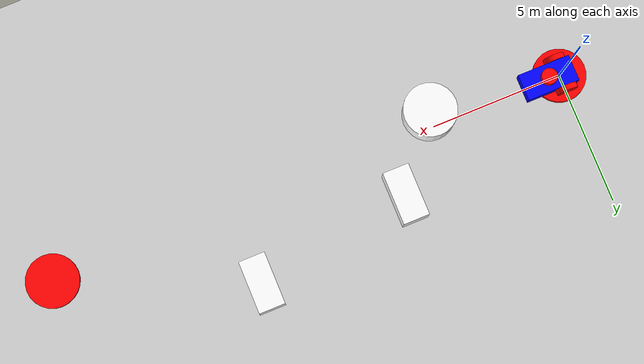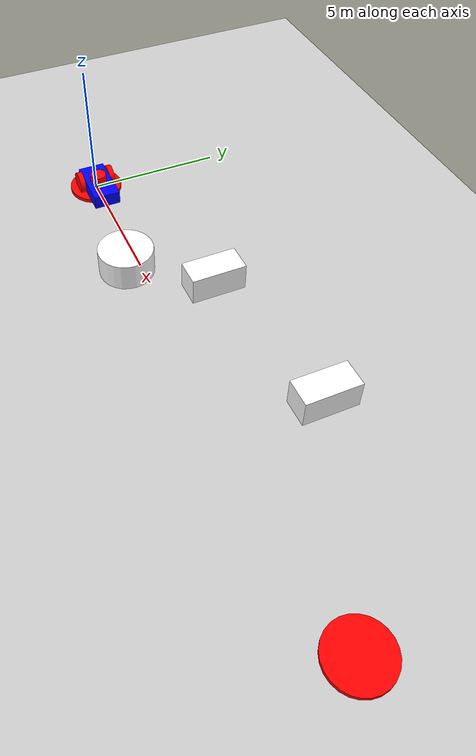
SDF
<?xml version="1.0" ?>
<sdf version="1.10">
    <world name="car_world">
        <physics name="1ms" type="ignored">
            <max_step_size>0.001</max_step_size>
            <real_time_factor>1.0</real_time_factor>
        </physics>
        <plugin
                filename="gz-sim-physics-system"
                name="gz::sim::systems::Physics">
            <sim_time>true</sim_time>
            <real_time>true</real_time>
            <real_time_factor>true</real_time_factor>
        </plugin>
        <plugin
                filename="gz-sim-user-commands-system"
                name="gz::sim::systems::UserCommands">
            <sim_time>true</sim_time>
            <real_time>true</real_time>
            <real_time_factor>true</real_time_factor>
        </plugin>
        <plugin
                filename="gz-sim-scene-broadcaster-system"
                name="gz::sim::systems::SceneBroadcaster">
            <sim_time>true</sim_time>
            <real_time>true</real_time>
            <real_time_factor>true</real_time_factor>
        </plugin>
        <plugin filename="MinimalScene" name="gz::gui::plugins::MinimalScene">
            <gz-gui>
                <title>3D View</title>
                <property type="bool" key="showTitleBar">false</property>
                <property type="string" key="state">docked</property>
            </gz-gui>

            <engine>ogre2</engine>
            <scene>scene</scene>
            <ambient_light>0.4 0.4 0.4</ambient_light>
            <background_color>0.8 0.8 0.8</background_color>
            <camera_pose>-6 0 6 0 0.5 0</camera_pose>
            <camera_clip>
                <near>0.25</near>
                <far>25000</far>
            </camera_clip>
            <sim_time>true</sim_time>
            <real_time>true</real_time>
            <real_time_factor>true</real_time_factor>
        </plugin>

        <!-- World statistics -->
        <plugin filename="WorldStats" name="gz::gui::plugins::WorldStats">
            <gz-gui>
                <title>World stats</title>
                <property type="bool" key="showTitleBar">false</property>
                <property type="bool" key="resizable">false</property>
                <property type="double" key="height">110</property>
                <property type="double" key="width">290</property>
                <property type="double" key="z">1</property>

                <property type="string" key="state">floating</property>
                <anchors target="3D View">
                    <line own="right" target="right"/>
                    <line own="bottom" target="bottom"/>
                </anchors>
            </gz-gui>

            <sim_time>true</sim_time>
            <real_time>true</real_time>
            <real_time_factor>true</real_time_factor>
            <iterations>true</iterations>
            <topic>/world/world_demo/stats</topic>

        </plugin>

        <light type="directional" name="sun">
            <cast_shadows>true</cast_shadows>
            <pose>0 0 10 0 0 0</pose>
            <diffuse>0.8 0.8 0.8 1</diffuse>
            <specular>0.2 0.2 0.2 1</specular>
            <attenuation>
                <range>1000</range>
                <constant>0.9</constant>
                <linear>0.01</linear>
                <quadratic>0.001</quadratic>
            </attenuation>
            <direction>-0.5 0.1 -0.9</direction>
        </light>

        <model name="ground_plane">
            <static>true</static>
            <link name="link">
                <collision name="collision">
                    <geometry>
                        <plane>
                            <normal>0 0 1</normal>
                        </plane>
                    </geometry>
                </collision>
                <visual name="visual">
                    <geometry>
                        <plane>
                            <normal>0 0 1</normal>
                            <size>1000 1000</size>
                        </plane>
                    </geometry>
                    <material>
                        <ambient>0.8 0.8 0.8 1</ambient>
                        <diffuse>0.8 0.8 0.8 1</diffuse>
                        <specular>0.8 0.8 0.8 1</specular>
                    </material>
                </visual>
            </link>
        </model>
        <include>
            <pose>0 0 0 0 0 0</pose>
            <uri>model://robot</uri>
        </include>

        <model name='ros_symbol_target'>
            <static>true</static>
            <link name="symbol_target">
                <collision name='one_one'>
                    <pose>20.0 0.0 0 0 0 0</pose>
                    <geometry>
                        <cylinder>
                            <radius>1.0</radius>
                            <length>0.25</length>
                        </cylinder>
                    </geometry>
                    <max_contacts>10</max_contacts>
                    <surface>
                        <bounce/>
                        <friction>
                            <ode/>
                        </friction>
                        <contact>
                            <ode/>
                        </contact>
                    </surface>
                </collision>

                <visual name='one_one'>
                    <pose>20.0 0.0 0 0 0 0</pose>
                    <geometry>
                        <cylinder>
                            <radius>1.0</radius>
                            <length>0.25</length>
                        </cylinder>
                    </geometry>
                    <material>
                        <ambient>1 0 0 1</ambient>
                        <diffuse>1 0 0 1</diffuse>
                        <specular>0.2 0.2 0.2 1</specular>
                        <emissive>0 0 0 1</emissive>
                    </material>
                </visual>

            </link>
        </model>

        <model name='ros_symbol_start'>
            <static>true</static>
            <link name="symbol">
                <collision name='one_one'>
                    <pose>0.0 0.0 0 0 0 0</pose>
                    <geometry>
                        <cylinder>
                            <radius>1.0</radius>
                            <length>0.25</length>
                        </cylinder>
                    </geometry>
                    <max_contacts>10</max_contacts>
                    <surface>
                        <bounce/>
                        <friction>
                            <ode/>
                        </friction>
                        <contact>
                            <ode/>
                        </contact>
                    </surface>
                </collision>

                <visual name='one_one'>
                    <pose>0.0 0.0 0 0 0 0</pose>
                    <geometry>
                        <cylinder>
                            <radius>1.0</radius>
                            <length>0.25</length>
                        </cylinder>
                    </geometry>
                    <material>
                        <ambient>1 0 0 1</ambient>
                        <diffuse>1 0 0 1</diffuse>
                        <specular>0.2 0.2 0.2 1</specular>
                        <emissive>0 0 0 1</emissive>
                    </material>
                </visual>
            </link>
        </model>

        <model name='obstacle1_cylinder'>
            <static>true</static>
            <link name='symbol'>
                <collision name='one_one'>
                    <pose>5.0 -0.5 0.25 0 0 0</pose>
                    <geometry>
                        <cylinder>
                            <radius>1.0</radius>
                            <length>1.5</length>
                        </cylinder>
                    </geometry>
                    <max_contacts>10</max_contacts>
                    <surface>
                        <bounce/>
                        <friction>
                            <ode/>
                        </friction>
                        <contact>
                            <ode/>
                        </contact>
                    </surface>
                </collision>

                <visual name='one_one'>
                    <pose>5.0 -0.5 0.25 0 0 0</pose>
                    <geometry>
                        <cylinder>
                            <radius>1.0</radius>
                            <length>1.5</length>
                        </cylinder>
                    </geometry>
                    <material>
                        <ambient>1 1 1 1</ambient>
                        <diffuse>1 1 1 1</diffuse>
                        <specular>0.2 0.2 0.2 1</specular>
                        <emissive>0 0 0 1</emissive>
                    </material>
                </visual>
            </link>
        </model>

        <model name='obstacle2_boxes'>
            <static>true</static>
            <link name='box1'>
                <collision name='one_one'>
                    <pose>7.0 2.0 0.25 0 0 0</pose>
                    <geometry>
                        <box>
                            <size>1.0 2.0 1.5</size>
                        </box>
                    </geometry>
                    <max_contacts>10</max_contacts>
                    <surface>
                        <bounce/>
                        <friction>
                            <ode/>
                        </friction>
                        <contact>
                            <ode/>
                        </contact>
                    </surface>
                </collision>

                <visual name='one_one'>
                    <pose>7.0 2.0 0.25 0 0 0</pose>
                    <geometry>
                        <box>
                            <size>1.0 2.0 1.5</size>
                        </box>
                    </geometry>
                    <material>
                        <ambient>1 1 1 1</ambient>
                        <diffuse>1 1 1 1</diffuse>
                        <specular>0.2 0.2 0.2 1</specular>
                        <emissive>0 0 0 1</emissive>
                    </material>
                </visual>
            </link>
            <link name='box2'>
                <collision name='one_one'>
                    <pose>13.0 3.0 0.25 0 0 0</pose>
                    <geometry>
                        <box>
                            <size>1.0 2.0 1.5</size>
                        </box>
                    </geometry>
                    <max_contacts>10</max_contacts>
                    <surface>
                        <bounce/>
                        <friction>
                            <ode/>
                        </friction>
                        <contact>
                            <ode/>
                        </contact>
                    </surface>
                </collision>

                <visual name='one_one'>
                    <pose>13.0 3.0 0.25 0 0 0</pose>
                    <geometry>
                        <box>
                            <size>1.0 2.0 1.5</size>
                        </box>
                    </geometry>
                    <material>
                        <ambient>1 1 1 1</ambient>
                        <diffuse>1 1 1 1</diffuse>
                        <specular>0.2 0.2 0.2 1</specular>
                        <emissive>0 0 0 1</emissive>
                    </material>
                </visual>
            </link>

        </model>
    </world>
</sdf>

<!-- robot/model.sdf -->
<sdf version="1.5">
    <model name='vehicle_blue' canonical_link='chassis'>
        <plugin
                filename="gz-sim-diff-drive-system"
                name="gz::sim::systems::DiffDrive">
            <left_joint>left_wheel_joint</left_joint>
            <right_joint>right_wheel_joint</right_joint>
            <wheel_separation>1.2</wheel_separation>
            <wheel_radius>0.4</wheel_radius>
            <odom_publish_frequency>30</odom_publish_frequency>
            <update_rate>50</update_rate>
            <topic>cmd_vel</topic>
            <sim_time>true</sim_time>
            <real_time>true</real_time>
            <real_time_factor>true</real_time_factor>
        </plugin>

        <link name='chassis'>
            <pose relative_to='__model__'>0.5 0 0.4 0 0 0</pose>
            <inertial> <!--inertial properties of the link mass, inertia matix-->
                <mass>1.14395</mass>
                <inertia>
                    <ixx>0.095329</ixx>
                    <ixy>0</ixy>
                    <ixz>0</ixz>
                    <iyy>0.381317</iyy>
                    <iyz>0</iyz>
                    <izz>0.476646</izz>
                </inertia>
            </inertial>
            <visual name='visual'>
                <geometry>
                    <box>
                        <size>2.0 1.0 0.5</size>
                    </box>
                </geometry>
                <!--let's add color to our link-->
                <material>
                    <ambient>0.0 0.0 1.0 1</ambient>
                    <diffuse>0.0 0.0 1.0 1</diffuse>
                    <specular>0.0 0.0 1.0 1</specular>
                </material>
            </visual>
            <collision name='collision'>
                <geometry>
                    <box>
                        <size>2.0 1.0 0.5</size>
                    </box>
                </geometry>
            </collision>
        </link>

        <link name='left_wheel'>
            <pose relative_to="chassis">-0.5 0.6 0 -1.5707 0 0</pose>
            <inertial>
                <mass>1</mass>
                <inertia>
                    <ixx>0.043333</ixx>
                    <ixy>0</ixy>
                    <ixz>0</ixz>
                    <iyy>0.043333</iyy>
                    <iyz>0</iyz>
                    <izz>0.08</izz>
                </inertia>
            </inertial>
            <visual name='visual'>
                <geometry>
                    <cylinder>
                        <radius>0.4</radius>
                        <length>0.2</length>
                    </cylinder>
                </geometry>
                <material>
                    <ambient>1.0 0.0 0.0 1</ambient>
                    <diffuse>1.0 0.0 0.0 1</diffuse>
                    <specular>1.0 0.0 0.0 1</specular>
                </material>
            </visual>
            <collision name='collision'>
                <geometry>
                    <cylinder>
                        <radius>0.4</radius>
                        <length>0.2</length>
                    </cylinder>
                </geometry>
            </collision>
        </link>
        <link name='right_wheel'>
            <pose relative_to="chassis">-0.5 -0.6 0 -1.5707 0 0</pose> <!--angles are in radian-->
            <inertial>
                <mass>1</mass>
                <inertia>
                    <ixx>0.043333</ixx>
                    <ixy>0</ixy>
                    <ixz>0</ixz>
                    <iyy>0.043333</iyy>
                    <iyz>0</iyz>
                    <izz>0.08</izz>
                </inertia>
            </inertial>
            <visual name='visual'>
                <geometry>
                    <cylinder>
                        <radius>0.4</radius>
                        <length>0.2</length>
                    </cylinder>
                </geometry>
                <material>
                    <ambient>1.0 0.0 0.0 1</ambient>
                    <diffuse>1.0 0.0 0.0 1</diffuse>
                    <specular>1.0 0.0 0.0 1</specular>
                </material>
            </visual>
            <collision name='collision'>
                <geometry>
                    <cylinder>
                        <radius>0.4</radius>
                        <length>0.2</length>
                    </cylinder>
                </geometry>
            </collision>
        </link>

        <frame name="caster_frame" attached_to='chassis'>
            <pose>0.8 0 -0.2 0 0 0</pose>
        </frame>

        <!--caster wheel-->
        <link name='caster'>
            <pose relative_to='caster_frame'/>
            <inertial>
                <mass>1</mass>
                <inertia>
                    <ixx>0.016</ixx>
                    <ixy>0</ixy>
                    <ixz>0</ixz>
                    <iyy>0.016</iyy>
                    <iyz>0</iyz>
                    <izz>0.016</izz>
                </inertia>
            </inertial>
            <visual name='visual'>
                <geometry>
                    <sphere>
                        <radius>0.2</radius>
                    </sphere>
                </geometry>
                <material>
                    <ambient>0.0 1 0.0 1</ambient>
                    <diffuse>0.0 1 0.0 1</diffuse>
                    <specular>0.0 1 0.0 1</specular>
                </material>
            </visual>
            <collision name='collision'>
                <geometry>
                    <sphere>
                        <radius>0.2</radius>
                    </sphere>
                </geometry>
            </collision>
        </link>

        <joint name='left_wheel_joint' type='revolute'>
            <pose relative_to='left_wheel'/>
            <parent>chassis</parent>
            <child>left_wheel</child>
            <axis>
                <xyz expressed_in='__model__'>0 1 0
                </xyz> <!--can be defined as any frame or even arbitrary frames-->
                <limit>
                    <lower>-1.79769e+308</lower>    <!--negative infinity-->
                    <upper>1.79769e+308</upper>     <!--positive infinity-->
                </limit>
            </axis>
        </joint>
        <joint name='right_wheel_joint' type='revolute'>
            <pose relative_to='right_wheel'/>
            <parent>chassis</parent>
            <child>right_wheel</child>
            <axis>
                <xyz expressed_in='__model__'>0 1 0</xyz>
                <limit>
                    <lower>-1.79769e+308</lower>    <!--negative infinity-->
                    <upper>1.79769e+308</upper>     <!--positive infinity-->
                </limit>
            </axis>
        </joint>
        <joint name='caster_wheel' type='ball'>
            <parent>chassis</parent>
            <child>caster</child>
        </joint>

        <link name="lidar_frame">
            <pose relative_to="chassis">0 0 0.4 0 0 0</pose>
            <visual name='visual'>
                <geometry>
                    <cylinder>
                        <radius>0.3</radius>
                        <length>0.3</length>
                    </cylinder>
                </geometry>
                <material>
                    <ambient>1 0 0 1</ambient>
                    <diffuse>1 0 0 1</diffuse>
                    <specular>1 0 0 1</specular>
                </material>
            </visual>
            <collision name='collision'>
                <geometry>
                    <cylinder>
                        <radius>0.3</radius>
                        <length>0.3</length>
                    </cylinder>
                </geometry>
            </collision>
            <inertial>
                <mass>1</mass>
                <inertia>
                    <ixx>0.016</ixx>
                    <ixy>0</ixy>
                    <ixz>0</ixz>
                    <iyy>0.016</iyy>
                    <iyz>0</iyz>
                    <izz>0.016</izz>
                </inertia>
            </inertial>

            <sensor name='gpu_lidar' type='gpu_lidar'>"
                <pose relative_to='lidar_frame'>0 0 0 0 0 0</pose>
                <topic>lidar</topic>
                <update_rate>50</update_rate>
                <ray>
                    <scan>
                        <horizontal>
                            <samples>640</samples>
                            <resolution>1</resolution>
                            <min_angle>-1.396263</min_angle>
                            <max_angle>1.396263</max_angle>
                        </horizontal>
                        <vertical>
                            <samples>1</samples>
                            <resolution>0.01</resolution>
                            <min_angle>0</min_angle>
                            <max_angle>0</max_angle>
                        </vertical>
                    </scan>
                    <range>
                        <min>0.08</min>
                        <max>10.0</max>
                        <resolution>0.01</resolution>
                    </range>
                </ray>
                <always_on>1</always_on>
                <visualize>true</visualize>
            </sensor>

        </link>
        <joint name="lidar_joint" type="fixed">
            <parent>chassis</parent>
            <child>lidar_frame</child>
        </joint>

        <plugin
                filename="gz-sim-sensors-system"
                name="gz::sim::systems::Sensors">
            <render_engine>ogre2</render_engine>
            <sim_time>true</sim_time>
            <real_time>true</real_time>
            <real_time_factor>true</real_time_factor>
        </plugin>
        <plugin filename="gz-sim-joint-state-publisher-system"
                name="gz::sim::systems::JointStatePublisher">
            <topic>joint_states</topic>
            <joint_name>left_wheel_joint</joint_name>
            <joint_name>right_wheel_joint</joint_name>
            <sim_time>true</sim_time>
            <real_time>true</real_time>
            <real_time_factor>true</real_time_factor>
        </plugin>

    </model>
</sdf>
